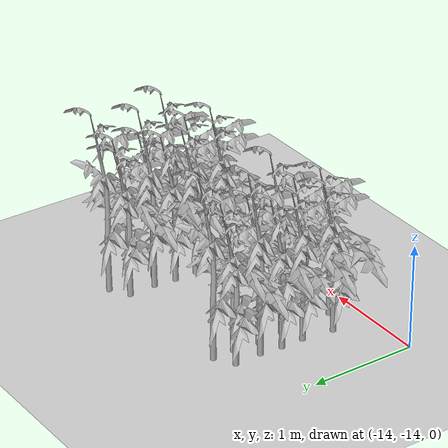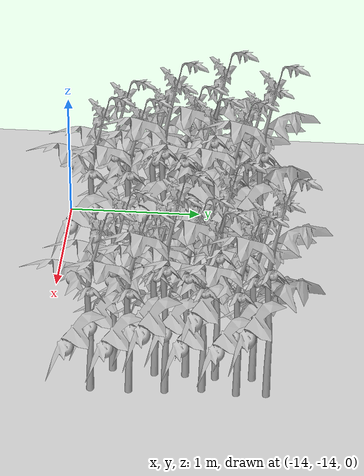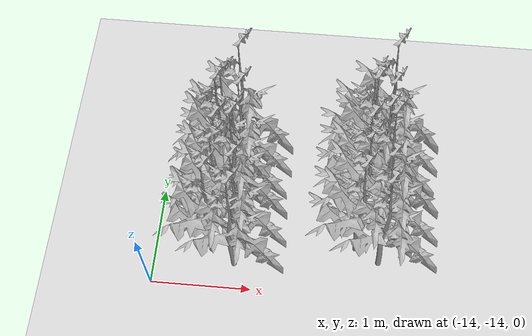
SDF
<sdf version="1.6">
 <world name="default">
  <model name="ground_plane">
   <static>1</static>
   <link name="link">
    <collision name="collision">
     <geometry><plane><normal>0 0 1</normal><size>100 100</size></plane></geometry>
     <surface>
      <contact><collide_bitmask>65535</collide_bitmask></contact>
      <friction><ode><mu>100</mu><mu2>50</mu2></ode></friction>
     </surface>
    </collision>
    <visual name="visual">
     <cast_shadows>0</cast_shadows>
     <geometry><plane><normal>0 0 1</normal><size>100 100</size></plane></geometry>
     <material>
      <script><uri>file://media/materials/scripts/gazebo.material</uri><name>Gazebo/Grey</name></script>
     </material>
    </visual>
   </link>
  </model>
  <model name="Front_Plant_1_27">
   <model name="tomato_plant_medium">
    <static>1</static>
    <link name="link">
     <collision name="collision">
      <pose>0 0 0 1.5708 -0 0</pose>
      <geometry><mesh><scale>0.5 0.5 0.5</scale><uri>model://stick/meshes/stick.dae</uri></mesh></geometry>
     </collision>
     <visual name="visual">
      <geometry>
       <mesh><scale>5e-06 5e-06 6e-06</scale><uri>model://tomato_plant_medium/meshes/tomato-plant.dae</uri></mesh>
      </geometry>
     </visual>
    </link>
    <pose>0.087453 -0.595994 0.012396 0 -0 0</pose>
   </model>
   <model name="tomato_plant_medium_0">
    <static>1</static>
    <link name="link">
     <collision name="collision">
      <pose>0 0 0 1.5708 -0 0</pose>
      <geometry><mesh><scale>0.5 0.5 0.5</scale><uri>model://stick/meshes/stick.dae</uri></mesh></geometry>
     </collision>
     <visual name="visual">
      <geometry>
       <mesh><scale>5e-06 5e-06 6e-06</scale><uri>model://tomato_plant_medium/meshes/tomato-plant.dae</uri></mesh>
      </geometry>
     </visual>
    </link>
    <pose>-0.086166 -0.251822 0.012396 0 -0 0</pose>
   </model>
   <model name="tomato_plant_medium_1">
    <static>1</static>
    <link name="link">
     <collision name="collision">
      <pose>0 0 0 1.5708 -0 0</pose>
      <geometry><mesh><scale>0.5 0.5 0.5</scale><uri>model://stick/meshes/stick.dae</uri></mesh></geometry>
     </collision>
     <visual name="visual">
      <geometry>
       <mesh><scale>5e-06 5e-06 6e-06</scale><uri>model://tomato_plant_medium/meshes/tomato-plant.dae</uri></mesh>
      </geometry>
     </visual>
    </link>
    <pose>0.080199 0.118127 0.012396 0 -0 0</pose>
   </model>
   <model name="tomato_plant_small">
    <static>1</static>
    <link name="link">
     <collision name="collision">
      <pose>0 0 0 1.5708 -0 0</pose>
      <geometry><mesh><scale>0.5 0.45 0.5</scale><uri>model://stick/meshes/stick.dae</uri></mesh></geometry>
     </collision>
     <visual name="visual">
      <geometry>
       <mesh><scale>5e-06 5e-06 5e-06</scale><uri>model://tomato_plant_small/meshes/tomato-plant.dae</uri></mesh>
      </geometry>
     </visual>
    </link>
    <pose>0.099683 -1.12011 0.012396 0 -0 0</pose>
   </model>
   <model name="tomato_plant_small_0">
    <static>1</static>
    <link name="link">
     <collision name="collision">
      <pose>0 0 0 1.5708 -0 0</pose>
      <geometry><mesh><scale>0.5 0.45 0.5</scale><uri>model://stick/meshes/stick.dae</uri></mesh></geometry>
     </collision>
     <visual name="visual">
      <geometry>
       <mesh><scale>5e-06 5e-06 5e-06</scale><uri>model://tomato_plant_small/meshes/tomato-plant.dae</uri></mesh>
      </geometry>
     </visual>
    </link>
    <pose>-0.138771 -0.983982 0.012396 0 -0 0</pose>
   </model>
   <model name="tomato_plant_small_1">
    <static>1</static>
    <link name="link">
     <collision name="collision">
      <pose>0 0 0 1.5708 -0 0</pose>
      <geometry><mesh><scale>0.5 0.45 0.5</scale><uri>model://stick/meshes/stick.dae</uri></mesh></geometry>
     </collision>
     <visual name="visual">
      <geometry>
       <mesh><scale>5e-06 5e-06 5e-06</scale><uri>model://tomato_plant_small/meshes/tomato-plant.dae</uri></mesh>
      </geometry>
     </visual>
    </link>
    <pose>0.101334 -0.848814 0.012396 0 -0 0</pose>
   </model>
   <model name="tomato_plant_small_2">
    <static>1</static>
    <link name="link">
     <collision name="collision">
      <pose>0 0 0 1.5708 -0 0</pose>
      <geometry><mesh><scale>0.5 0.45 0.5</scale><uri>model://stick/meshes/stick.dae</uri></mesh></geometry>
     </collision>
     <visual name="visual">
      <geometry>
       <mesh><scale>5e-06 5e-06 5e-06</scale><uri>model://tomato_plant_small/meshes/tomato-plant.dae</uri></mesh>
      </geometry>
     </visual>
    </link>
    <pose>-0.103369 -0.683189 0.012396 0 -0 0</pose>
   </model>
   <model name="tomato_plant_small_3">
    <static>1</static>
    <link name="link">
     <collision name="collision">
      <pose>0 0 0 1.5708 -0 0</pose>
      <geometry><mesh><scale>0.5 0.45 0.5</scale><uri>model://stick/meshes/stick.dae</uri></mesh></geometry>
     </collision>
     <visual name="visual">
      <geometry>
       <mesh><scale>5e-06 5e-06 5e-06</scale><uri>model://tomato_plant_small/meshes/tomato-plant.dae</uri></mesh>
      </geometry>
     </visual>
    </link>
    <pose>-0.104381 -0.464811 0.012396 0 -0 0</pose>
   </model>
   <model name="tomato_plant_small_4">
    <static>1</static>
    <link name="link">
     <collision name="collision">
      <pose>0 0 0 1.5708 -0 0</pose>
      <geometry><mesh><scale>0.5 0.45 0.5</scale><uri>model://stick/meshes/stick.dae</uri></mesh></geometry>
     </collision>
     <visual name="visual">
      <geometry>
       <mesh><scale>5e-06 5e-06 5e-06</scale><uri>model://tomato_plant_small/meshes/tomato-plant.dae</uri></mesh>
      </geometry>
     </visual>
    </link>
    <pose>0.055604 -0.336879 0.012396 0 -0 0</pose>
   </model>
   <model name="tomato_plant_small_5">
    <static>1</static>
    <link name="link">
     <collision name="collision">
      <pose>0 0 0 1.5708 -0 0</pose>
      <geometry><mesh><scale>0.5 0.45 0.5</scale><uri>model://stick/meshes/stick.dae</uri></mesh></geometry>
     </collision>
     <visual name="visual">
      <geometry>
       <mesh><scale>5e-06 5e-06 5e-06</scale><uri>model://tomato_plant_small/meshes/tomato-plant.dae</uri></mesh>
      </geometry>
     </visual>
    </link>
    <pose>0.085059 -0.092572 0.012396 0 -0 0</pose>
   </model>
   <model name="tomato_plant_small_6">
    <static>1</static>
    <link name="link">
     <collision name="collision">
      <pose>0 0 0 1.5708 -0 0</pose>
      <geometry><mesh><scale>0.5 0.45 0.5</scale><uri>model://stick/meshes/stick.dae</uri></mesh></geometry>
     </collision>
     <visual name="visual">
      <geometry>
       <mesh><scale>5e-06 5e-06 5e-06</scale><uri>model://tomato_plant_small/meshes/tomato-plant.dae</uri></mesh>
      </geometry>
     </visual>
    </link>
    <pose>-0.096345 0.008888 0.012396 0 -0 0</pose>
   </model>
   <static>0</static>
   <pose>-13.2838 -12.6419 0 0 -0 0</pose>
  </model>
  <model name="Front_Plant_1_28">
   <model name="tomato_plant_medium">
    <static>1</static>
    <link name="link">
     <collision name="collision">
      <pose>0 0 0 1.5708 -0 0</pose>
      <geometry><mesh><scale>0.5 0.5 0.5</scale><uri>model://stick/meshes/stick.dae</uri></mesh></geometry>
     </collision>
     <visual name="visual">
      <geometry>
       <mesh><scale>5e-06 5e-06 6e-06</scale><uri>model://tomato_plant_medium/meshes/tomato-plant.dae</uri></mesh>
      </geometry>
     </visual>
    </link>
    <pose>0.087453 -0.595994 0.012396 0 -0 0</pose>
   </model>
   <model name="tomato_plant_medium_0">
    <static>1</static>
    <link name="link">
     <collision name="collision">
      <pose>0 0 0 1.5708 -0 0</pose>
      <geometry><mesh><scale>0.5 0.5 0.5</scale><uri>model://stick/meshes/stick.dae</uri></mesh></geometry>
     </collision>
     <visual name="visual">
      <geometry>
       <mesh><scale>5e-06 5e-06 6e-06</scale><uri>model://tomato_plant_medium/meshes/tomato-plant.dae</uri></mesh>
      </geometry>
     </visual>
    </link>
    <pose>-0.086166 -0.251822 0.012396 0 -0 0</pose>
   </model>
   <model name="tomato_plant_medium_1">
    <static>1</static>
    <link name="link">
     <collision name="collision">
      <pose>0 0 0 1.5708 -0 0</pose>
      <geometry><mesh><scale>0.5 0.5 0.5</scale><uri>model://stick/meshes/stick.dae</uri></mesh></geometry>
     </collision>
     <visual name="visual">
      <geometry>
       <mesh><scale>5e-06 5e-06 6e-06</scale><uri>model://tomato_plant_medium/meshes/tomato-plant.dae</uri></mesh>
      </geometry>
     </visual>
    </link>
    <pose>0.080199 0.118127 0.012396 0 -0 0</pose>
   </model>
   <model name="tomato_plant_small">
    <static>1</static>
    <link name="link">
     <collision name="collision">
      <pose>0 0 0 1.5708 -0 0</pose>
      <geometry><mesh><scale>0.5 0.45 0.5</scale><uri>model://stick/meshes/stick.dae</uri></mesh></geometry>
     </collision>
     <visual name="visual">
      <geometry>
       <mesh><scale>5e-06 5e-06 5e-06</scale><uri>model://tomato_plant_small/meshes/tomato-plant.dae</uri></mesh>
      </geometry>
     </visual>
    </link>
    <pose>0.099683 -1.12011 0.012396 0 -0 0</pose>
   </model>
   <model name="tomato_plant_small_0">
    <static>1</static>
    <link name="link">
     <collision name="collision">
      <pose>0 0 0 1.5708 -0 0</pose>
      <geometry><mesh><scale>0.5 0.45 0.5</scale><uri>model://stick/meshes/stick.dae</uri></mesh></geometry>
     </collision>
     <visual name="visual">
      <geometry>
       <mesh><scale>5e-06 5e-06 5e-06</scale><uri>model://tomato_plant_small/meshes/tomato-plant.dae</uri></mesh>
      </geometry>
     </visual>
    </link>
    <pose>-0.138771 -0.983982 0.012396 0 -0 0</pose>
   </model>
   <model name="tomato_plant_small_1">
    <static>1</static>
    <link name="link">
     <collision name="collision">
      <pose>0 0 0 1.5708 -0 0</pose>
      <geometry><mesh><scale>0.5 0.45 0.5</scale><uri>model://stick/meshes/stick.dae</uri></mesh></geometry>
     </collision>
     <visual name="visual">
      <geometry>
       <mesh><scale>5e-06 5e-06 5e-06</scale><uri>model://tomato_plant_small/meshes/tomato-plant.dae</uri></mesh>
      </geometry>
     </visual>
    </link>
    <pose>0.101334 -0.848814 0.012396 0 -0 0</pose>
   </model>
   <model name="tomato_plant_small_2">
    <static>1</static>
    <link name="link">
     <collision name="collision">
      <pose>0 0 0 1.5708 -0 0</pose>
      <geometry><mesh><scale>0.5 0.45 0.5</scale><uri>model://stick/meshes/stick.dae</uri></mesh></geometry>
     </collision>
     <visual name="visual">
      <geometry>
       <mesh><scale>5e-06 5e-06 5e-06</scale><uri>model://tomato_plant_small/meshes/tomato-plant.dae</uri></mesh>
      </geometry>
     </visual>
    </link>
    <pose>-0.103369 -0.683189 0.012396 0 -0 0</pose>
   </model>
   <model name="tomato_plant_small_3">
    <static>1</static>
    <link name="link">
     <collision name="collision">
      <pose>0 0 0 1.5708 -0 0</pose>
      <geometry><mesh><scale>0.5 0.45 0.5</scale><uri>model://stick/meshes/stick.dae</uri></mesh></geometry>
     </collision>
     <visual name="visual">
      <geometry>
       <mesh><scale>5e-06 5e-06 5e-06</scale><uri>model://tomato_plant_small/meshes/tomato-plant.dae</uri></mesh>
      </geometry>
     </visual>
    </link>
    <pose>-0.104381 -0.464811 0.012396 0 -0 0</pose>
   </model>
   <model name="tomato_plant_small_4">
    <static>1</static>
    <link name="link">
     <collision name="collision">
      <pose>0 0 0 1.5708 -0 0</pose>
      <geometry><mesh><scale>0.5 0.45 0.5</scale><uri>model://stick/meshes/stick.dae</uri></mesh></geometry>
     </collision>
     <visual name="visual">
      <geometry>
       <mesh><scale>5e-06 5e-06 5e-06</scale><uri>model://tomato_plant_small/meshes/tomato-plant.dae</uri></mesh>
      </geometry>
     </visual>
    </link>
    <pose>0.055604 -0.336879 0.012396 0 -0 0</pose>
   </model>
   <model name="tomato_plant_small_5">
    <static>1</static>
    <link name="link">
     <collision name="collision">
      <pose>0 0 0 1.5708 -0 0</pose>
      <geometry><mesh><scale>0.5 0.45 0.5</scale><uri>model://stick/meshes/stick.dae</uri></mesh></geometry>
     </collision>
     <visual name="visual">
      <geometry>
       <mesh><scale>5e-06 5e-06 5e-06</scale><uri>model://tomato_plant_small/meshes/tomato-plant.dae</uri></mesh>
      </geometry>
     </visual>
    </link>
    <pose>0.085059 -0.092572 0.012396 0 -0 0</pose>
   </model>
   <model name="tomato_plant_small_6">
    <static>1</static>
    <link name="link">
     <collision name="collision">
      <pose>0 0 0 1.5708 -0 0</pose>
      <geometry><mesh><scale>0.5 0.45 0.5</scale><uri>model://stick/meshes/stick.dae</uri></mesh></geometry>
     </collision>
     <visual name="visual">
      <geometry>
       <mesh><scale>5e-06 5e-06 5e-06</scale><uri>model://tomato_plant_small/meshes/tomato-plant.dae</uri></mesh>
      </geometry>
     </visual>
    </link>
    <pose>-0.096345 0.008888 0.012396 0 -0 0</pose>
   </model>
   <static>0</static>
   <pose>-11.8415 -12.5118 0 0 -0 0</pose>
  </model>
 </world>
</sdf>
